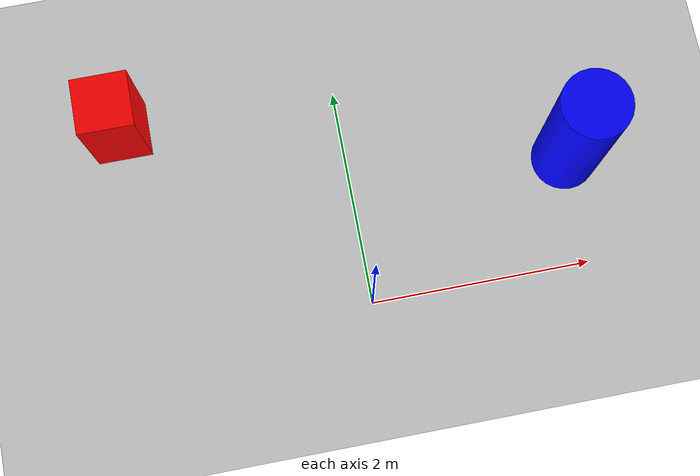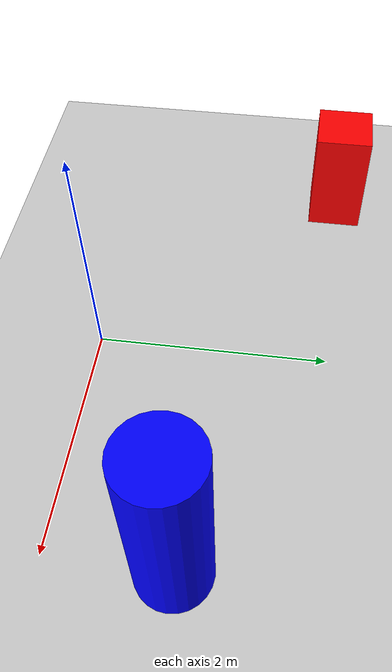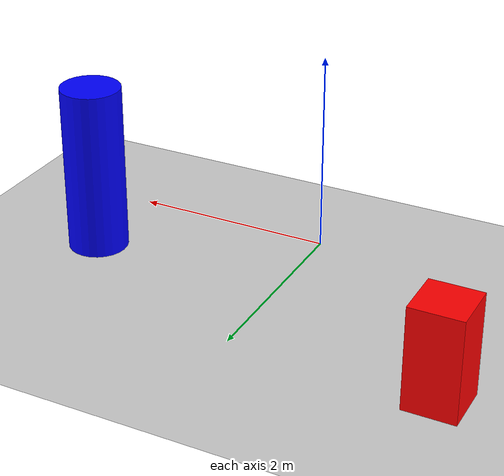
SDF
<?xml version="1.0" ?>
<sdf version="1.4">
  <world name="default">

    <!-- 地面 -->
    <include>
      <uri>model://ground_plane</uri>
    </include>

    <!-- 光源 -->
    <include>
      <uri>model://sun</uri>
    </include>

    <!-- 静态障碍物: 人 (0.6m x 0.6m x 1.7m = 060_060_170) -->
    <model name="person_060_060_170">
      <pose>2 1 0.85 0 0 0</pose>
      <static>true</static>
      <link name="link">
        <collision name="collision">
          <geometry>
            <cylinder>
              <radius>0.3</radius>
              <length>1.7</length>
            </cylinder>
          </geometry>
        </collision>
        <visual name="visual">
          <geometry>
            <cylinder>
              <radius>0.3</radius>
              <length>1.7</length>
            </cylinder>
          </geometry>
          <material>
            <ambient>0 0 1 1</ambient>
            <diffuse>0 0 1 1</diffuse>
          </material>
        </visual>
      </link>
    </model>

    <!-- 动态障碍物: 盒子 (0.5m x 0.5m x 1.0m = 050_050_100) -->
    <model name="dynamic_box_050_050_100">
      <pose>-2 2 0.5 0 0 0</pose>
      <static>false</static>
      <link name="link">
        <inertial>
          <mass>1.0</mass>
          <inertia>
            <ixx>0.083</ixx>
            <ixy>0.0</ixy>
            <ixz>0.0</ixz>
            <iyy>0.083</iyy>
            <iyz>0.0</iyz>
            <izz>0.083</izz>
          </inertia>
        </inertial>
        <collision name="collision">
          <geometry>
            <box>
              <size>0.5 0.5 1.0</size>
            </box>
          </geometry>
        </collision>
        <visual name="visual">
          <geometry>
            <box>
              <size>0.5 0.5 1.0</size>
            </box>
          </geometry>
          <material>
            <ambient>1 0 0 1</ambient>
            <diffuse>1 0 0 1</diffuse>
          </material>
        </visual>
      </link>

      <!-- 添加插件控制移动 -->
      <plugin name="box_controller" filename="libgazebo_ros_planar_move.so">
        <commandTopic>/dynamic_box_cmd_vel</commandTopic>
        <odometryTopic>/dynamic_box_odom</odometryTopic>
        <odometryFrame>odom</odometryFrame>
        <robotBaseFrame>dynamic_box_050_050_100</robotBaseFrame>
        <robotNamespace>/dynamic_box</robotNamespace>
      </plugin>
    </model>

  </world>
</sdf>
